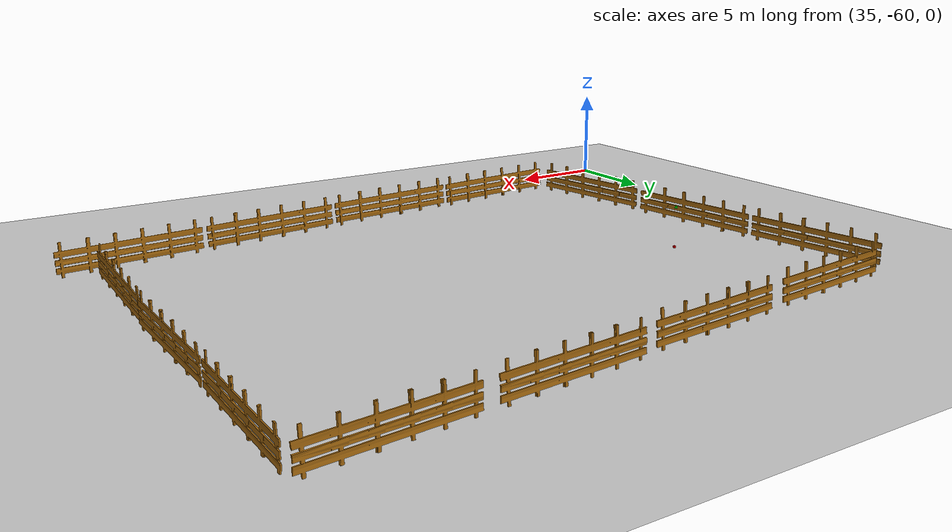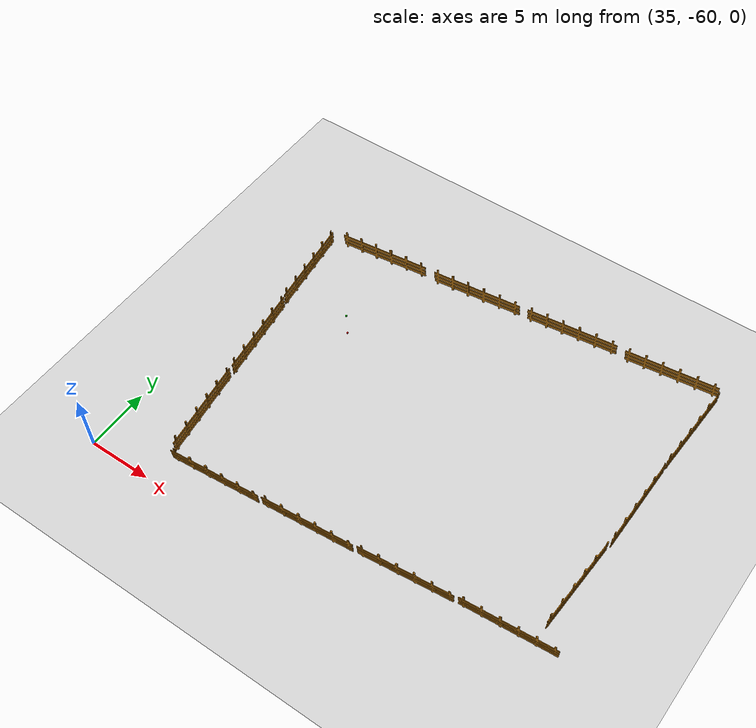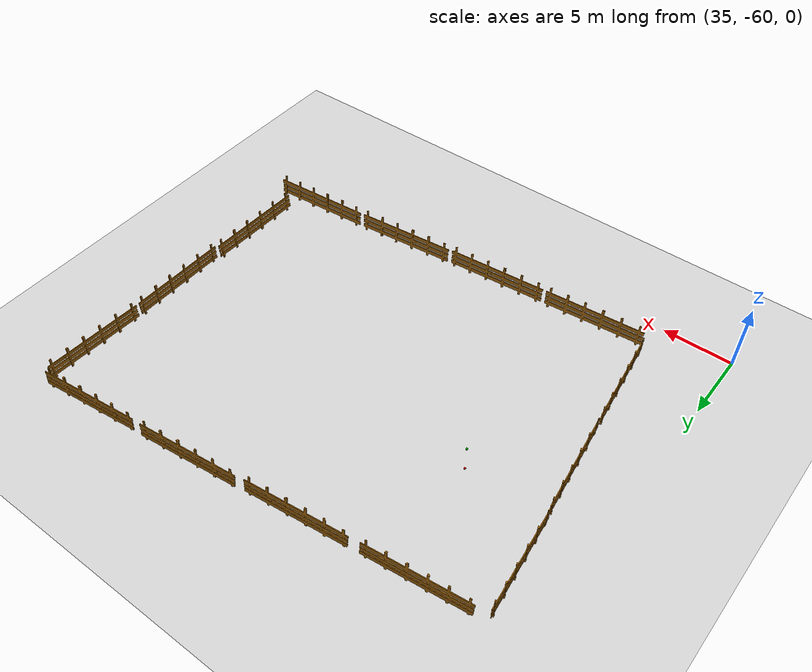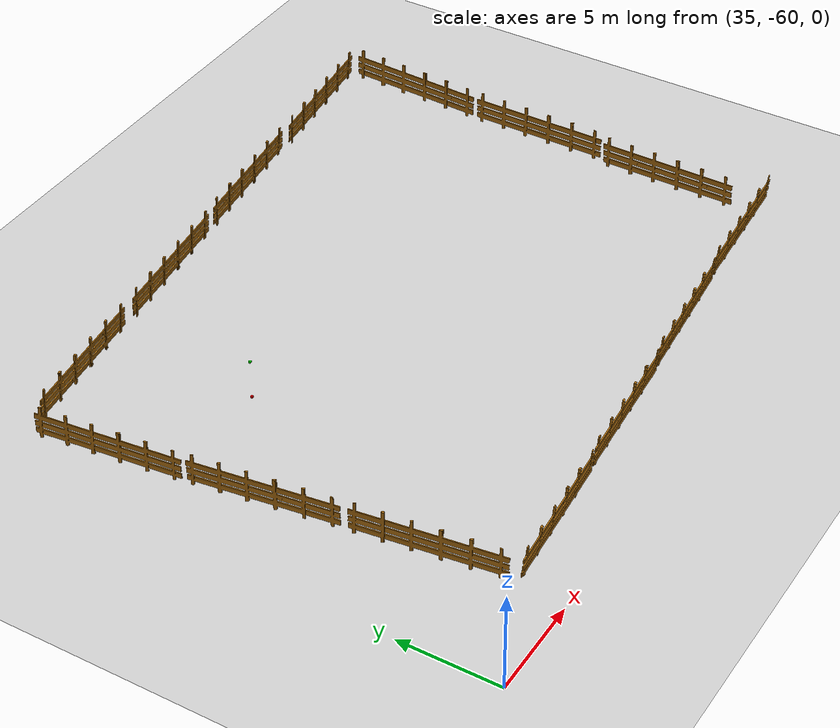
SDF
<sdf version="1.6">
 <world name="default">
  <light name="sun" type="directional">
   <pose>0 0 10 0 -0 0</pose>
   <diffuse>0.8 0.8 0.8 1</diffuse>
   <specular>0.2 0.2 0.2 1</specular>
   <attenuation>
    <range>1000</range>
    <constant>0.9</constant>
    <linear>0.01</linear>
    <quadratic>0.001</quadratic>
   </attenuation>
   <direction>-0.5 0.1 -0.9</direction>
  </light>
  <physics name="default_physics" default="0" type="ode">
   <real_time_update_rate>200</real_time_update_rate>
   <real_time_factor>1</real_time_factor>
   <max_step_size>0.005</max_step_size>
  </physics>
  <gravity>0 0 -9.8</gravity>
  <magnetic_field>6e-06 2.3e-05 -4.2e-05</magnetic_field>
  <atmosphere type="adiabatic"/>
  <scene>
   <sky><clouds><speed>12</speed></clouds></sky>
   <shadows>1</shadows>
   <ambient>0.4 0.4 0.4 1</ambient>
   <background>0.7 0.7 0.7 1</background>
  </scene>
  <spherical_coordinates>
   <surface_model>EARTH_WGS84</surface_model>
   <latitude_deg>0</latitude_deg>
   <longitude_deg>0</longitude_deg>
   <elevation>0</elevation>
   <heading_deg>0</heading_deg>
  </spherical_coordinates>
  <model name="fence_5">
   <static>1</static>
   <link name="link">
    <inertial>
     <mass>100</mass>
     <inertia><ixx>192.33</ixx><ixy>0</ixy><ixz>0</ixz><iyy>12.33</iyy><iyz>0</iyz><izz>204</izz></inertia>
    </inertial>
    <collision name="collision">
     <geometry><mesh><uri>model://fence_5/meshes/fence_5_brown.dae</uri><scale>1 1 1</scale></mesh></geometry>
    </collision>
    <visual name="visual">
     <geometry><mesh><uri>model://fence_5/meshes/fence_5_brown.dae</uri><scale>1 1 1</scale></mesh></geometry>
    </visual>
   </link>
   <pose>40.8701 -53.2889 0.582132 0.013738 0.008267 -1.43809</pose>
  </model>
  <model name="fence_5_clone_0_clone">
   <static>1</static>
   <link name="link">
    <inertial>
     <mass>100</mass>
     <inertia><ixx>192.33</ixx><ixy>0</ixy><ixz>0</ixz><iyy>12.33</iyy><iyz>0</iyz><izz>204</izz></inertia>
    </inertial>
    <collision name="collision">
     <geometry><mesh><uri>model://fence_5/meshes/fence_5_brown.dae</uri><scale>1 1 1</scale></mesh></geometry>
    </collision>
    <visual name="visual">
     <geometry><mesh><uri>model://fence_5/meshes/fence_5_brown.dae</uri><scale>1 1 1</scale></mesh></geometry>
    </visual>
   </link>
   <pose>70.409 -35.0166 0.57468 -0.006741 0.005382 -1.61256</pose>
  </model>
  <model name="fence_5_clone_0_clone_0">
   <static>1</static>
   <link name="link">
    <inertial>
     <mass>100</mass>
     <inertia><ixx>192.33</ixx><ixy>0</ixy><ixz>0</ixz><iyy>12.33</iyy><iyz>0</iyz><izz>204</izz></inertia>
    </inertial>
    <collision name="collision">
     <geometry><mesh><uri>model://fence_5/meshes/fence_5_brown.dae</uri><scale>1 1 1</scale></mesh></geometry>
    </collision>
    <visual name="visual">
     <geometry><mesh><uri>model://fence_5/meshes/fence_5_brown.dae</uri><scale>1 1 1</scale></mesh></geometry>
    </visual>
   </link>
   <pose>70.2158 -42.5085 0.563305 -0.00443 -0.002695 -1.57885</pose>
  </model>
  <model name="fence_5_clone_0_clone_1">
   <static>1</static>
   <link name="link">
    <inertial>
     <mass>100</mass>
     <inertia><ixx>192.33</ixx><ixy>0</ixy><ixz>0</ixz><iyy>12.33</iyy><iyz>0</iyz><izz>204</izz></inertia>
    </inertial>
    <collision name="collision">
     <geometry><mesh><uri>model://fence_5/meshes/fence_5_brown.dae</uri><scale>1 1 1</scale></mesh></geometry>
    </collision>
    <visual name="visual">
     <geometry><mesh><uri>model://fence_5/meshes/fence_5_brown.dae</uri><scale>1 1 1</scale></mesh></geometry>
    </visual>
   </link>
   <pose>69.91 -50.0597 0.561728 -0.014608 -0.022497 -1.61072</pose>
  </model>
  <model name="fence_5_clone_0_clone_1_clone_clone_1">
   <static>1</static>
   <link name="link">
    <inertial>
     <mass>100</mass>
     <inertia><ixx>192.33</ixx><ixy>0</ixy><ixz>0</ixz><iyy>12.33</iyy><iyz>0</iyz><izz>204</izz></inertia>
    </inertial>
    <collision name="collision">
     <geometry><mesh><uri>model://fence_5/meshes/fence_5_brown.dae</uri><scale>1 1 1</scale></mesh></geometry>
    </collision>
    <visual name="visual">
     <geometry><mesh><uri>model://fence_5/meshes/fence_5_brown.dae</uri><scale>1 1 1</scale></mesh></geometry>
    </visual>
   </link>
   <pose>44.448 -58.4726 0.445745 -0.084613 -0.001515 -3.05896</pose>
  </model>
  <model name="fence_5_clone_0_clone_clone_clone_0">
   <static>1</static>
   <link name="link">
    <inertial>
     <mass>100</mass>
     <inertia><ixx>192.33</ixx><ixy>0</ixy><ixz>0</ixz><iyy>12.33</iyy><iyz>0</iyz><izz>204</izz></inertia>
    </inertial>
    <collision name="collision">
     <geometry><mesh><uri>model://fence_5/meshes/fence_5_brown.dae</uri><scale>1 1 1</scale></mesh></geometry>
    </collision>
    <visual name="visual">
     <geometry><mesh><uri>model://fence_5/meshes/fence_5_brown.dae</uri><scale>1 1 1</scale></mesh></geometry>
    </visual>
   </link>
   <pose>41.5533 -33.201 0.67577 0.084583 -0.00842 0.112795</pose>
  </model>
  <model name="grass_ground_plane">
   <static>1</static>
   <link name="link">
    <collision name="collision">
     <geometry><plane><normal>0 0 1</normal><size>200 200</size></plane></geometry>
     <surface><friction><ode><mu>0.5</mu><mu2>0.5</mu2></ode></friction></surface>
    </collision>
    <visual name="visual">
     <cast_shadows>0</cast_shadows>
     <geometry><plane><normal>0 0 1</normal><size>200 200</size></plane></geometry>
     <material>
      <script>
       <uri>model://grass_ground_plane/materials/scripts/grass_ground_plane.material</uri>
       <name>GrassGroundPlane/Image</name>
      </script>
     </material>
    </visual>
   </link>
  </model>
  <model name="fence_5_clone_0_clone_1_clone_clone_1_clone">
   <static>1</static>
   <link name="link">
    <inertial>
     <mass>100</mass>
     <inertia><ixx>192.33</ixx><ixy>0</ixy><ixz>0</ixz><iyy>12.33</iyy><iyz>0</iyz><izz>204</izz></inertia>
    </inertial>
    <collision name="collision">
     <geometry><mesh><uri>model://fence_5/meshes/fence_5_brown.dae</uri><scale>1 1 1</scale></mesh></geometry>
    </collision>
    <visual name="visual">
     <geometry><mesh><uri>model://fence_5/meshes/fence_5_brown.dae</uri><scale>1 1 1</scale></mesh></geometry>
    </visual>
   </link>
   <pose>51.9659 -57.8126 0.466205 -0.084611 -0.00161 -3.06007</pose>
  </model>
  <model name="fence_5_clone_0_clone_1_clone_clone_1_clone_0">
   <static>1</static>
   <link name="link">
    <inertial>
     <mass>100</mass>
     <inertia><ixx>192.33</ixx><ixy>0</ixy><ixz>0</ixz><iyy>12.33</iyy><iyz>0</iyz><izz>204</izz></inertia>
    </inertial>
    <collision name="collision">
     <geometry><mesh><uri>model://fence_5/meshes/fence_5_brown.dae</uri><scale>1 1 1</scale></mesh></geometry>
    </collision>
    <visual name="visual">
     <geometry><mesh><uri>model://fence_5/meshes/fence_5_brown.dae</uri><scale>1 1 1</scale></mesh></geometry>
    </visual>
   </link>
   <pose>59.5065 -57.0711 0.452323 -0.084626 -0.000377 -3.04554</pose>
  </model>
  <model name="fence_5_clone_0_clone_1_clone_clone_1_clone_1">
   <static>1</static>
   <link name="link">
    <inertial>
     <mass>100</mass>
     <inertia><ixx>192.33</ixx><ixy>0</ixy><ixz>0</ixz><iyy>12.33</iyy><iyz>0</iyz><izz>204</izz></inertia>
    </inertial>
    <collision name="collision">
     <geometry><mesh><uri>model://fence_5/meshes/fence_5_brown.dae</uri><scale>1 1 1</scale></mesh></geometry>
    </collision>
    <visual name="visual">
     <geometry><mesh><uri>model://fence_5/meshes/fence_5_brown.dae</uri><scale>1 1 1</scale></mesh></geometry>
    </visual>
   </link>
   <pose>67.0169 -56.3742 0.459987 -0.084594 -0.002343 -3.06872</pose>
  </model>
  <model name="fence_5_clone_1">
   <static>1</static>
   <link name="link">
    <inertial>
     <mass>100</mass>
     <inertia><ixx>192.33</ixx><ixy>0</ixy><ixz>0</ixz><iyy>12.33</iyy><iyz>0</iyz><izz>204</izz></inertia>
    </inertial>
    <collision name="collision">
     <geometry><mesh><uri>model://fence_5/meshes/fence_5_brown.dae</uri><scale>1 1 1</scale></mesh></geometry>
    </collision>
    <visual name="visual">
     <geometry><mesh><uri>model://fence_5/meshes/fence_5_brown.dae</uri><scale>1 1 1</scale></mesh></geometry>
    </visual>
   </link>
   <pose>39.8787 -45.7288 0.579027 0.014102 0.000621 -1.43846</pose>
  </model>
  <model name="fence_5_clone_2">
   <static>1</static>
   <link name="link">
    <inertial>
     <mass>100</mass>
     <inertia><ixx>192.33</ixx><ixy>0</ixy><ixz>0</ixz><iyy>12.33</iyy><iyz>0</iyz><izz>204</izz></inertia>
    </inertial>
    <collision name="collision">
     <geometry><mesh><uri>model://fence_5/meshes/fence_5_brown.dae</uri><scale>1 1 1</scale></mesh></geometry>
    </collision>
    <visual name="visual">
     <geometry><mesh><uri>model://fence_5/meshes/fence_5_brown.dae</uri><scale>1 1 1</scale></mesh></geometry>
    </visual>
   </link>
   <pose>38.8878 -38.3148 0.599755 0.011873 0.010848 -1.45214</pose>
  </model>
  <model name="fence_5_clone_0_clone_clone_clone_0_clone">
   <static>1</static>
   <link name="link">
    <inertial>
     <mass>100</mass>
     <inertia><ixx>192.33</ixx><ixy>0</ixy><ixz>0</ixz><iyy>12.33</iyy><iyz>0</iyz><izz>204</izz></inertia>
    </inertial>
    <collision name="collision">
     <geometry><mesh><uri>model://fence_5/meshes/fence_5_brown.dae</uri><scale>1 1 1</scale></mesh></geometry>
    </collision>
    <visual name="visual">
     <geometry><mesh><uri>model://fence_5/meshes/fence_5_brown.dae</uri><scale>1 1 1</scale></mesh></geometry>
    </visual>
   </link>
   <pose>49.5709 -32.2914 0.656882 0.084583 -0.00842 0.112795</pose>
  </model>
  <model name="fence_5_clone_0_clone_clone_clone_0_clone_0">
   <static>1</static>
   <link name="link">
    <inertial>
     <mass>100</mass>
     <inertia><ixx>192.33</ixx><ixy>0</ixy><ixz>0</ixz><iyy>12.33</iyy><iyz>0</iyz><izz>204</izz></inertia>
    </inertial>
    <collision name="collision">
     <geometry><mesh><uri>model://fence_5/meshes/fence_5_brown.dae</uri><scale>1 1 1</scale></mesh></geometry>
    </collision>
    <visual name="visual">
     <geometry><mesh><uri>model://fence_5/meshes/fence_5_brown.dae</uri><scale>1 1 1</scale></mesh></geometry>
    </visual>
   </link>
   <pose>57.4384 -31.344 0.657968 0.084583 -0.00842 0.112795</pose>
  </model>
  <model name="fence_5_clone_0_clone_clone_clone_0_clone_1">
   <static>1</static>
   <link name="link">
    <inertial>
     <mass>100</mass>
     <inertia><ixx>192.33</ixx><ixy>0</ixy><ixz>0</ixz><iyy>12.33</iyy><iyz>0</iyz><izz>204</izz></inertia>
    </inertial>
    <collision name="collision">
     <geometry><mesh><uri>model://fence_5/meshes/fence_5_brown.dae</uri><scale>1 1 1</scale></mesh></geometry>
    </collision>
    <visual name="visual">
     <geometry><mesh><uri>model://fence_5/meshes/fence_5_brown.dae</uri><scale>1 1 1</scale></mesh></geometry>
    </visual>
   </link>
   <pose>65.3625 -30.5155 0.664561 0.084583 -0.00842 0.112795</pose>
  </model>
  <model name="radiation_source">
   <pose>44 -42 0.5 0 0 0</pose>
   <static>true</static>
   <link name="link_radiation_source">
    <visual name="visual_radiation_source">
     <geometry><box><size>0.1 0.1 0.1</size></box></geometry>
     <material><ambient>1 0.0  0 1.0</ambient><diffuse>1 0.0  0 1.0</diffuse></material>
    </visual>
    <visual name="visual_radiation_source">
     <pose>0 0 2.0 0 0 0</pose>
     <geometry><box><size>0.1 0.1 0.1</size></box></geometry>
     <material><ambient>0 1.0  0 1.0</ambient><diffuse>0 1.0  0 1.0</diffuse></material>
    </visual>
    <sensor name="radiation_source" type="radiation_source">
     <always_on>1</always_on>
     <update_rate>1.0</update_rate>
     <topic>source_0/gamma</topic>
     <plugin filename="libradiation_source_plugin.so" name="radiation_source_plugin"/>
    </sensor>
   </link>
  </model>
 </world>
</sdf>
